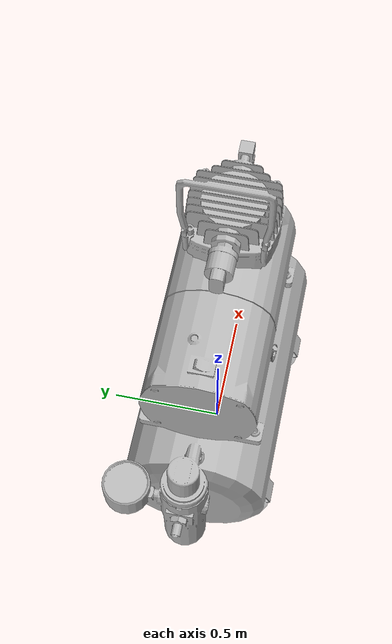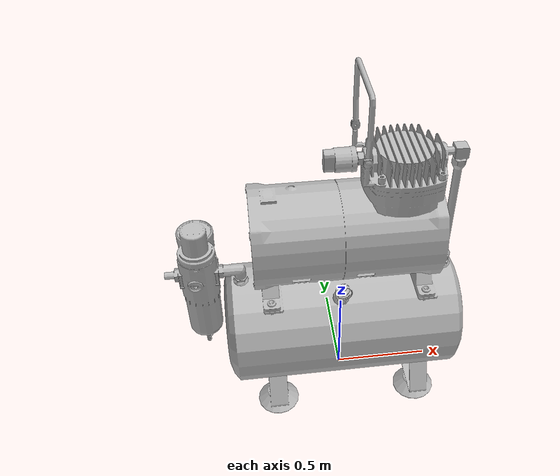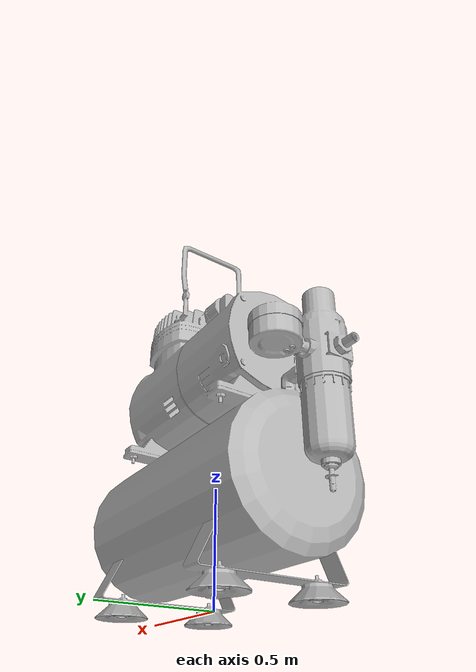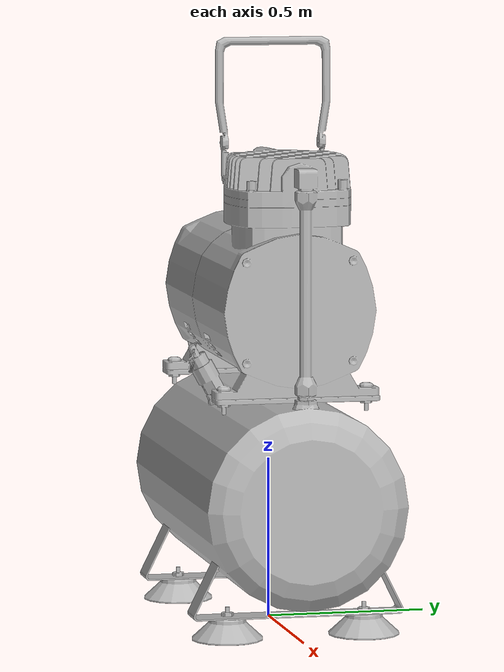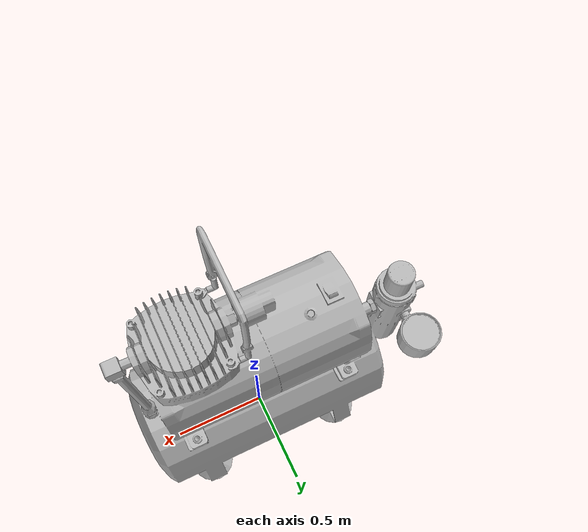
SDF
<?xml version="1.0" ?>
<sdf version="1.5">
  <model name="Compressor">
    <static>true</static>
    <link name="link">
      <collision name="collision">
        <geometry>
            <mesh>
                <uri>model://compressor/meshes/compressor.stl</uri>
                <scale>1 1 1</scale>
            </mesh>
        </geometry>
      </collision>
      <visual name="visual">
        <geometry>
          <mesh>
            <uri>model://compressor/meshes/compressor.stl</uri>
            <scale>1 1 1</scale>
          </mesh>
        </geometry>
      </visual>
    </link>
    <gazebo reference="link">
      <material>Gazebo/White</material>
    </gazebo>
  </model>
</sdf>
